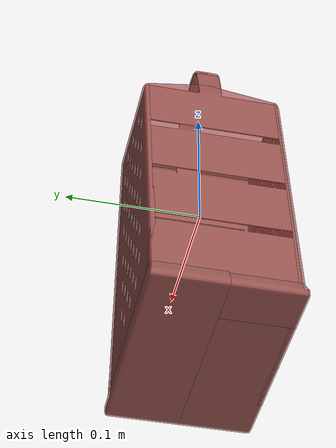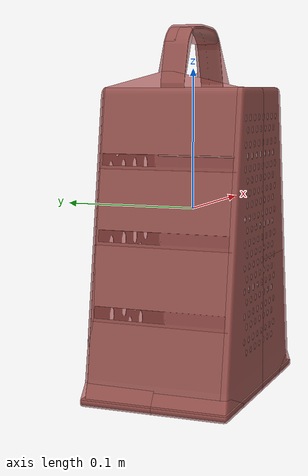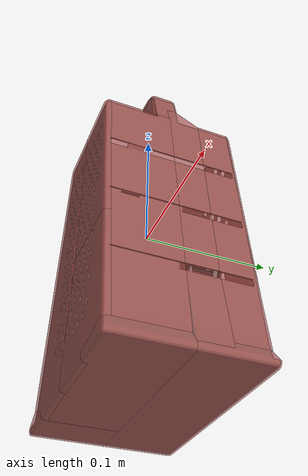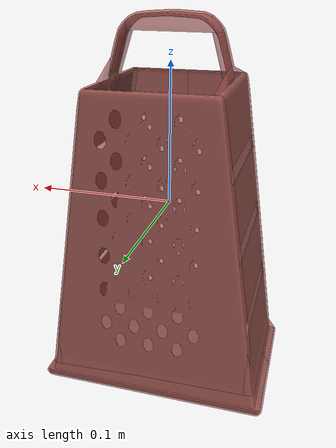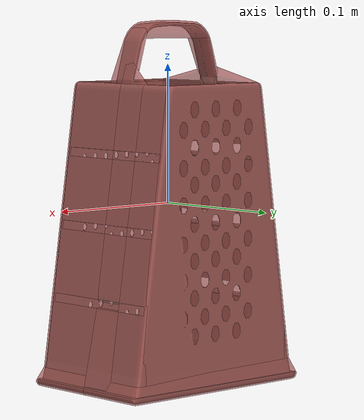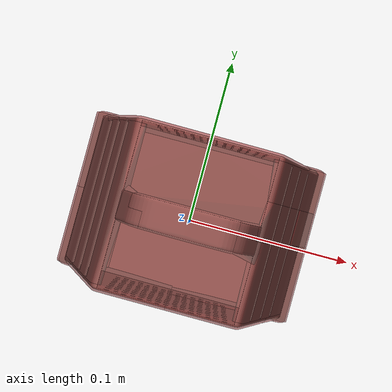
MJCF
<mujoco model="model">
  <option timestep="0.002" gravity="0.0 0.0 -9.81"/>
  <compiler angle="radian"/>
  <asset>
    <mesh file="visual/CheeseGrater011.obj" name="CheeseGrater011_vis"/>
    <texture file="visual/T_BC001.png" name="CheeseGrater011_material" type="2d"/>
    <material name="CheeseGrater011_material" rgba="1 1 1 1.0" texture="CheeseGrater011_material" shininess="0.1" specular="4"/>
    <mesh file="collision/collision_mesh_collision_0.obj" name="CheeseGrater011_collision_mesh_0"/>
    <mesh file="collision/collision_mesh_collision_1.obj" name="CheeseGrater011_collision_mesh_1"/>
    <mesh file="collision/collision_mesh_collision_2.obj" name="CheeseGrater011_collision_mesh_2"/>
    <mesh file="collision/collision_mesh_collision_3.obj" name="CheeseGrater011_collision_mesh_3"/>
    <mesh file="collision/collision_mesh_collision_4.obj" name="CheeseGrater011_collision_mesh_4"/>
    <mesh file="collision/collision_mesh_collision_5.obj" name="CheeseGrater011_collision_mesh_5"/>
    <mesh file="collision/collision_mesh_collision_6.obj" name="CheeseGrater011_collision_mesh_6"/>
    <mesh file="collision/collision_mesh_collision_7.obj" name="CheeseGrater011_collision_mesh_7"/>
    <mesh file="collision/collision_mesh_collision_8.obj" name="CheeseGrater011_collision_mesh_8"/>
    <mesh file="collision/collision_mesh_collision_9.obj" name="CheeseGrater011_collision_mesh_9"/>
    <mesh file="collision/collision_mesh_collision_10.obj" name="CheeseGrater011_collision_mesh_10"/>
    <mesh file="collision/collision_mesh_collision_11.obj" name="CheeseGrater011_collision_mesh_11"/>
    <mesh file="collision/collision_mesh_collision_12.obj" name="CheeseGrater011_collision_mesh_12"/>
    <mesh file="collision/collision_mesh_collision_13.obj" name="CheeseGrater011_collision_mesh_13"/>
    <mesh file="collision/collision_mesh_collision_14.obj" name="CheeseGrater011_collision_mesh_14"/>
  </asset>
  <default>
    <default class="visual">
      <geom conaffinity="0" contype="0" group="1" type="mesh"/>
    </default>
    <default class="collision">
      <geom group="0" rgba="0.5 0 0 0.5" density="1.0" solref="0.004 1" solimp="0.998 0.998 0.001"/>
    </default>
    <default class="spawn">
      <geom group="0" rgba="1 1 1 0.5" contype="0" conaffinity="0"/>
      <site group="0" rgba="1 1 1 0.5"/>
    </default>
    <default class="region">
      <geom group="1" conaffinity="0" contype="0" rgba="0 1 0 0" mass="0"/>
    </default>
  </default>
  <worldbody>
    <body>
      <body name="object">
        <geom mesh="CheeseGrater011_vis" type="mesh" solimp="0.998 0.998 0.001" solref="0.001 1" friction="0.95 0.3 0.1" class="visual" material="CheeseGrater011_material"/>
        <geom class="region" name="reg_bbox" type="box" pos="0.0 0.0 -3.7539999999988694e-05" size="0.08080757 0.05392758 0.13140359000000001"/>
        <geom mesh="CheeseGrater011_collision_mesh_0" type="mesh" class="collision"/>
        <geom mesh="CheeseGrater011_collision_mesh_1" type="mesh" class="collision"/>
        <geom mesh="CheeseGrater011_collision_mesh_2" type="mesh" class="collision"/>
        <geom mesh="CheeseGrater011_collision_mesh_3" type="mesh" class="collision"/>
        <geom mesh="CheeseGrater011_collision_mesh_4" type="mesh" class="collision"/>
        <geom mesh="CheeseGrater011_collision_mesh_5" type="mesh" class="collision"/>
        <geom mesh="CheeseGrater011_collision_mesh_6" type="mesh" class="collision"/>
        <geom mesh="CheeseGrater011_collision_mesh_7" type="mesh" class="collision"/>
        <geom mesh="CheeseGrater011_collision_mesh_8" type="mesh" class="collision"/>
        <geom mesh="CheeseGrater011_collision_mesh_9" type="mesh" class="collision"/>
        <geom mesh="CheeseGrater011_collision_mesh_10" type="mesh" class="collision"/>
        <geom mesh="CheeseGrater011_collision_mesh_11" type="mesh" class="collision"/>
        <geom mesh="CheeseGrater011_collision_mesh_12" type="mesh" class="collision"/>
        <geom mesh="CheeseGrater011_collision_mesh_13" type="mesh" class="collision"/>
        <geom mesh="CheeseGrater011_collision_mesh_14" type="mesh" class="collision"/>
      </body>
    </body>
  </worldbody>
  <actuator/>
</mujoco>
